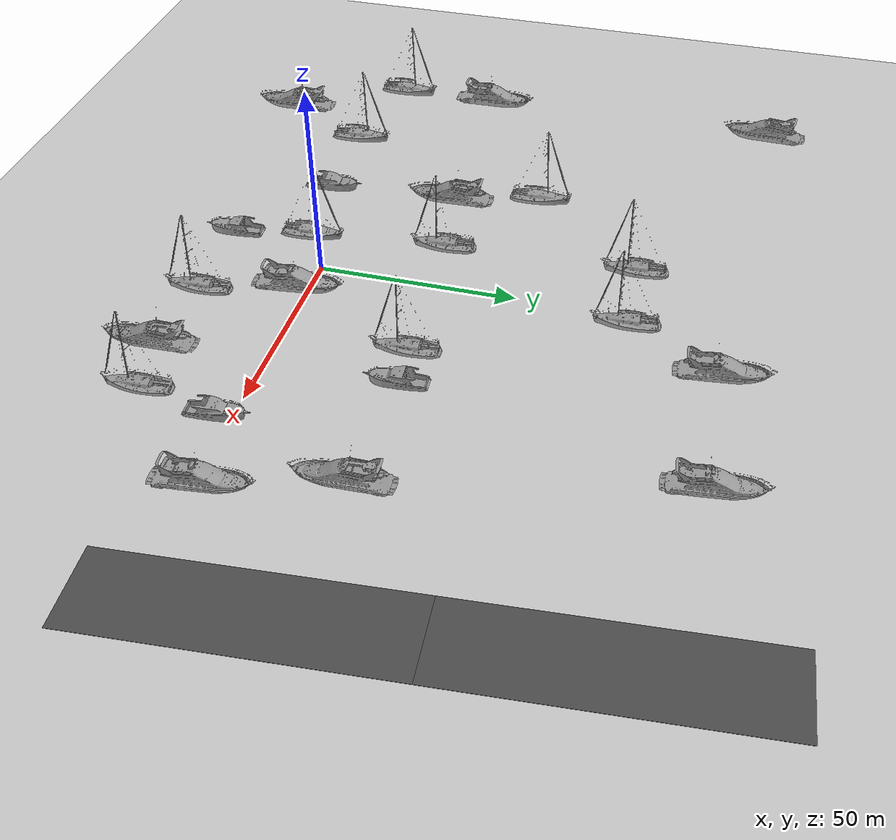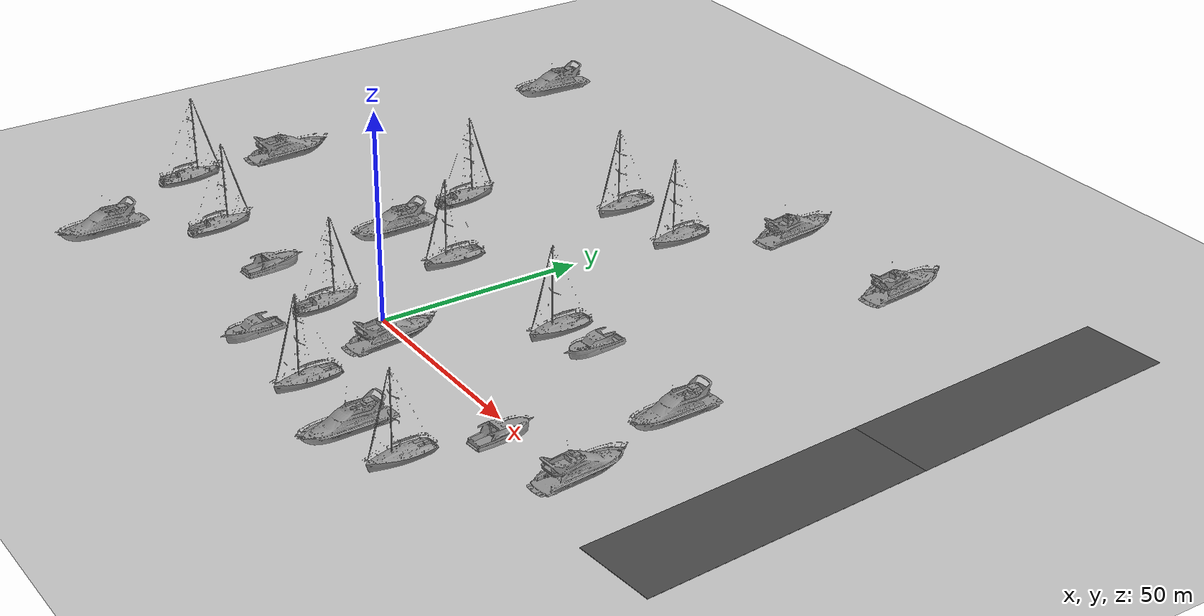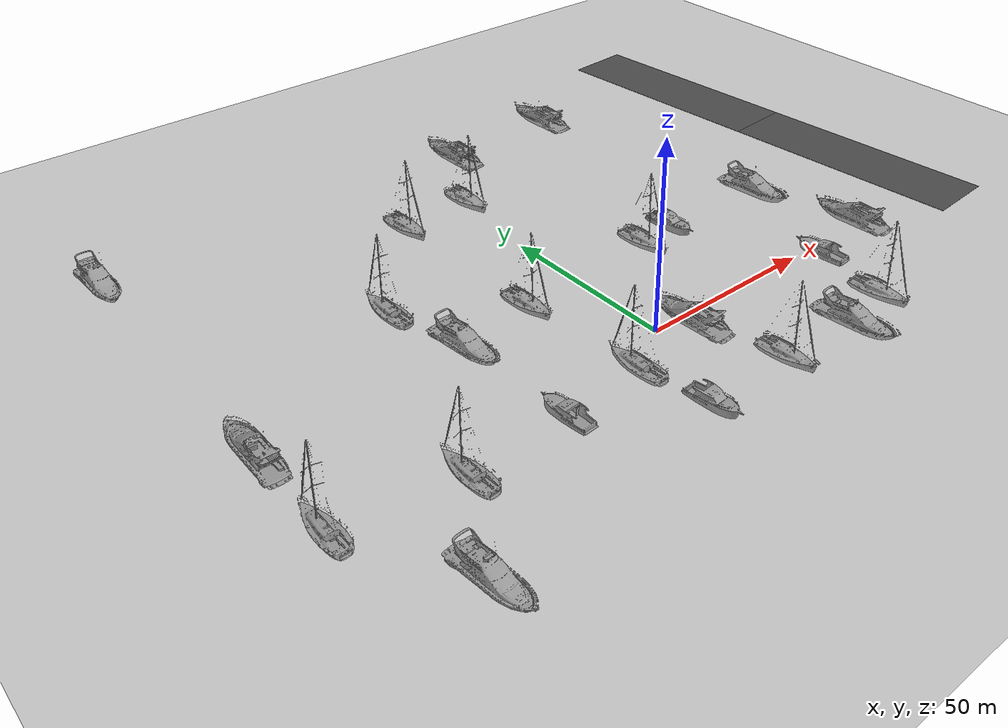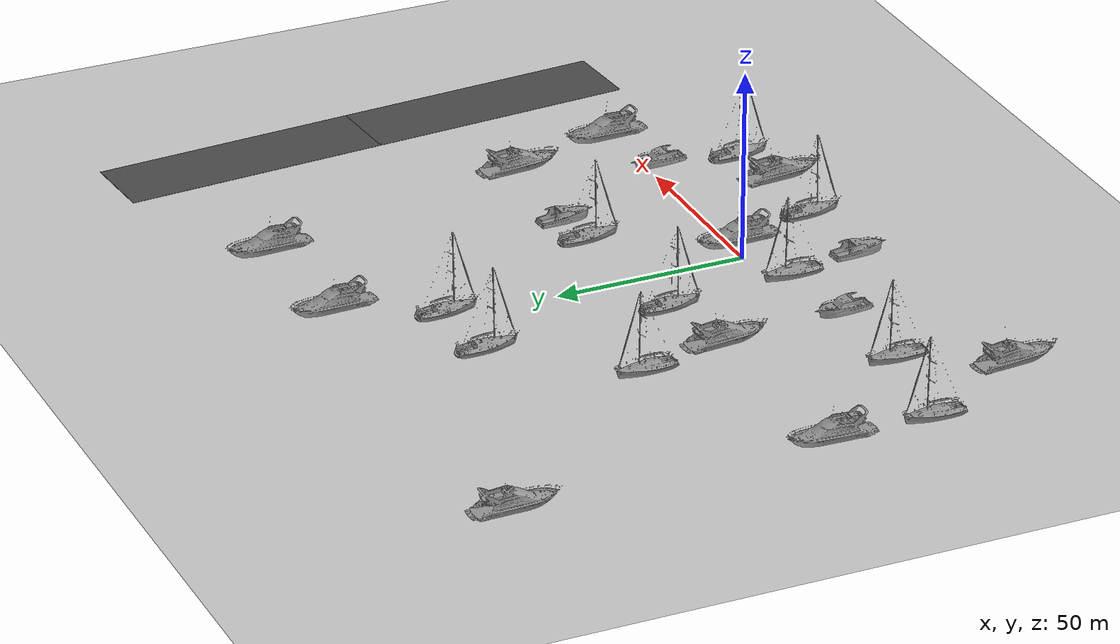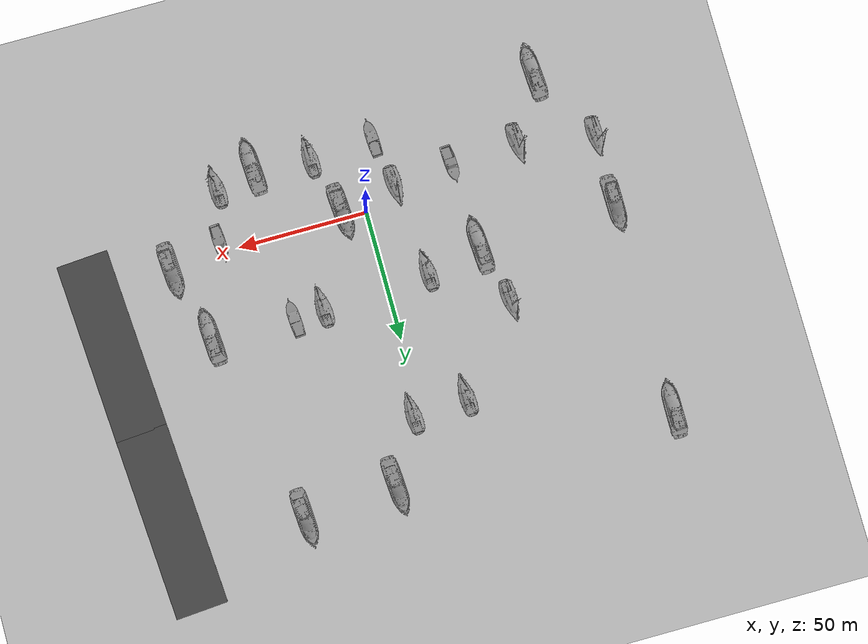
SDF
<sdf version="1.7">
 <world name="default">
  <model name="ground_plane">
   <static>1</static>
   <link name="link">
    <collision name="collision">
     <geometry><plane><normal>0 0 1</normal><size>100 100</size></plane></geometry>
     <surface><friction><ode><mu>100</mu><mu2>50</mu2></ode></friction></surface>
    </collision>
    <visual name="visual">
     <cast_shadows>0</cast_shadows>
     <geometry><plane><normal>0 0 1</normal><size>100 100</size></plane></geometry>
     <material>
      <script><uri>file://media/materials/scripts/gazebo.material</uri><name>Gazebo/Grey</name></script>
     </material>
    </visual>
   </link>
  </model>
  <model name="yacht_1">
   <static>1</static>
   <link name="link">
    <visual name="visual">
     <geometry>
      <mesh>
       <uri>/home/albert/marinero_ws/src/marinero_simulations/models/yacht_1/meshes/Yacht_v2.dae</uri>
       <scale>2.5 2.5 2.5</scale>
      </mesh>
     </geometry>
     <material>
      <script><uri>file://media/materials/scripts/gazebo.material</uri><name>Gazebo/Grey</name></script>
     </material>
    </visual>
    <collision name="collision">
     <geometry>
      <mesh>
       <uri>/home/albert/marinero_ws/src/marinero_simulations/models/yacht_1/meshes/Yacht_v2.dae</uri>
       <scale>2.5 2.5 2.5</scale>
      </mesh>
     </geometry>
    </collision>
   </link>
   <pose>-38.0961 24.5278 0.645733 0 -0 0.06455</pose>
  </model>
  <model name="yacht_1_0">
   <static>1</static>
   <link name="link">
    <visual name="visual">
     <geometry>
      <mesh>
       <uri>/home/albert/marinero_ws/src/marinero_simulations/models/yacht_2/meshes/Yatch.stl</uri>
       <scale>5 5 5</scale>
      </mesh>
     </geometry>
     <material>
      <script><uri>file://media/materials/scripts/gazebo.material</uri><name>Gazebo/Grey</name></script>
     </material>
    </visual>
    <collision name="collision">
     <geometry>
      <mesh>
       <uri>/home/albert/marinero_ws/src/marinero_simulations/models/yacht_2/meshes/Yatch.stl</uri>
       <scale>5 5 5</scale>
      </mesh>
     </geometry>
    </collision>
   </link>
   <pose>-35.982 -9.04595 0 0 -0 0.061909</pose>
  </model>
  <model name="yacht_1_0_clone">
   <static>1</static>
   <link name="link">
    <visual name="visual">
     <geometry>
      <mesh>
       <uri>/home/albert/marinero_ws/src/marinero_simulations/models/yacht_2/meshes/Yatch.stl</uri>
       <scale>5 5 5</scale>
      </mesh>
     </geometry>
     <material>
      <script><uri>file://media/materials/scripts/gazebo.material</uri><name>Gazebo/Grey</name></script>
     </material>
    </visual>
    <collision name="collision">
     <geometry>
      <mesh>
       <uri>/home/albert/marinero_ws/src/marinero_simulations/models/yacht_2/meshes/Yatch.stl</uri>
       <scale>5 5 5</scale>
      </mesh>
     </geometry>
    </collision>
   </link>
   <pose>36.7456 31.0094 0 0 0 -3.07578</pose>
  </model>
  <model name="yacht_1_0_clone_clone">
   <static>1</static>
   <link name="link">
    <visual name="visual">
     <geometry>
      <mesh>
       <uri>/home/albert/marinero_ws/src/marinero_simulations/models/yacht_2/meshes/Yatch.stl</uri>
       <scale>5 5 5</scale>
      </mesh>
     </geometry>
     <material>
      <script><uri>file://media/materials/scripts/gazebo.material</uri><name>Gazebo/Grey</name></script>
     </material>
    </visual>
    <collision name="collision">
     <geometry>
      <mesh>
       <uri>/home/albert/marinero_ws/src/marinero_simulations/models/yacht_2/meshes/Yatch.stl</uri>
       <scale>5 5 5</scale>
      </mesh>
     </geometry>
    </collision>
   </link>
   <pose>56.4576 -3.09947 0 0 -0 0.069781</pose>
  </model>
  <model name="yacht_1_clone">
   <static>1</static>
   <link name="link">
    <visual name="visual">
     <geometry>
      <mesh>
       <uri>/home/albert/marinero_ws/src/marinero_simulations/models/yacht_1/meshes/Yacht_v2.dae</uri>
       <scale>2.5 2.5 2.5</scale>
      </mesh>
     </geometry>
     <material>
      <script><uri>file://media/materials/scripts/gazebo.material</uri><name>Gazebo/Grey</name></script>
     </material>
    </visual>
    <collision name="collision">
     <geometry>
      <mesh>
       <uri>/home/albert/marinero_ws/src/marinero_simulations/models/yacht_1/meshes/Yacht_v2.dae</uri>
       <scale>2.5 2.5 2.5</scale>
      </mesh>
     </geometry>
    </collision>
   </link>
   <pose>68.5762 31.2105 0.645733 0 -0 0.06455</pose>
  </model>
  <model name="yacht_1_clone_0">
   <static>1</static>
   <link name="link">
    <visual name="visual">
     <geometry>
      <mesh>
       <uri>/home/albert/marinero_ws/src/marinero_simulations/models/yacht_1/meshes/Yacht_v2.dae</uri>
       <scale>2.5 2.5 2.5</scale>
      </mesh>
     </geometry>
     <material>
      <script><uri>file://media/materials/scripts/gazebo.material</uri><name>Gazebo/Grey</name></script>
     </material>
    </visual>
    <collision name="collision">
     <geometry>
      <mesh>
       <uri>/home/albert/marinero_ws/src/marinero_simulations/models/yacht_1/meshes/Yacht_v2.dae</uri>
       <scale>2.5 2.5 2.5</scale>
      </mesh>
     </geometry>
    </collision>
   </link>
   <pose>76.8082 0.608495 0.645733 0 0 -3.07126</pose>
  </model>
  <model name="yacht_1_clone_0_clone">
   <static>1</static>
   <link name="link">
    <visual name="visual">
     <geometry>
      <mesh>
       <uri>/home/albert/marinero_ws/src/marinero_simulations/models/yacht_1/meshes/Yacht_v2.dae</uri>
       <scale>2.5 2.5 2.5</scale>
      </mesh>
     </geometry>
     <material>
      <script><uri>file://media/materials/scripts/gazebo.material</uri><name>Gazebo/Grey</name></script>
     </material>
    </visual>
    <collision name="collision">
     <geometry>
      <mesh>
       <uri>/home/albert/marinero_ws/src/marinero_simulations/models/yacht_1/meshes/Yacht_v2.dae</uri>
       <scale>2.5 2.5 2.5</scale>
      </mesh>
     </geometry>
    </collision>
   </link>
   <pose>8.94491 -4.14798 0.645733 0 0 -3.07126</pose>
  </model>
  <model name="yacht_1_clone_clone">
   <static>1</static>
   <link name="link">
    <visual name="visual">
     <geometry>
      <mesh>
       <uri>/home/albert/marinero_ws/src/marinero_simulations/models/yacht_1/meshes/Yacht_v2.dae</uri>
       <scale>2.5 2.5 2.5</scale>
      </mesh>
     </geometry>
     <material>
      <script><uri>file://media/materials/scripts/gazebo.material</uri><name>Gazebo/Grey</name></script>
     </material>
    </visual>
    <collision name="collision">
     <geometry>
      <mesh>
       <uri>/home/albert/marinero_ws/src/marinero_simulations/models/yacht_1/meshes/Yacht_v2.dae</uri>
       <scale>2.5 2.5 2.5</scale>
      </mesh>
     </geometry>
    </collision>
   </link>
   <pose>37.1072 -27.1783 0.645733 0 -0 0.06455</pose>
  </model>
  <model name="yacht_1_0_clone_clone_0">
   <static>1</static>
   <link name="link">
    <visual name="visual">
     <geometry>
      <mesh>
       <uri>/home/albert/marinero_ws/src/marinero_simulations/models/yacht_2/meshes/Yatch.stl</uri>
       <scale>5 5 5</scale>
      </mesh>
     </geometry>
     <material>
      <script><uri>file://media/materials/scripts/gazebo.material</uri><name>Gazebo/Grey</name></script>
     </material>
    </visual>
    <collision name="collision">
     <geometry>
      <mesh>
       <uri>/home/albert/marinero_ws/src/marinero_simulations/models/yacht_2/meshes/Yatch.stl</uri>
       <scale>5 5 5</scale>
      </mesh>
     </geometry>
    </collision>
   </link>
   <pose>-9.67691 -27.4514 0 0 0 -3.07578</pose>
  </model>
  <model name="sailboat_1">
   <static>1</static>
   <link name="link">
    <visual name="visual">
     <pose>0 0 10.5 1.57 -0 0</pose>
     <geometry>
      <mesh>
       <uri>/home/albert/marinero_ws/src/marinero_simulations/models/sailboat_1/meshes/Sailboat.stl</uri>
       <scale>1800 1800 1800</scale>
      </mesh>
     </geometry>
     <material>
      <script><uri>file://media/materials/scripts/gazebo.material</uri><name>Gazebo/Grey</name></script>
     </material>
    </visual>
    <collision name="collision">
     <pose>0 0 10.5 1.57 -0 0</pose>
     <geometry>
      <mesh>
       <uri>/home/albert/marinero_ws/src/marinero_simulations/models/sailboat_1/meshes/Sailboat.stl</uri>
       <scale>1800 1800 1800</scale>
      </mesh>
     </geometry>
    </collision>
   </link>
   <pose>-62.3359 -10.8868 -0.195807 0 0 -1.52083</pose>
  </model>
  <model name="sailboat_1_clone">
   <static>1</static>
   <link name="link">
    <visual name="visual">
     <pose>0 0 10.5 1.57 -0 0</pose>
     <geometry>
      <mesh>
       <uri>/home/albert/marinero_ws/src/marinero_simulations/models/sailboat_1/meshes/Sailboat.stl</uri>
       <scale>1800 1800 1800</scale>
      </mesh>
     </geometry>
     <material>
      <script><uri>file://media/materials/scripts/gazebo.material</uri><name>Gazebo/Grey</name></script>
     </material>
    </visual>
    <collision name="collision">
     <pose>0 0 10.5 1.57 -0 0</pose>
     <geometry>
      <mesh>
       <uri>/home/albert/marinero_ws/src/marinero_simulations/models/sailboat_1/meshes/Sailboat.stl</uri>
       <scale>1800 1800 1800</scale>
      </mesh>
     </geometry>
    </collision>
   </link>
   <pose>-13.1173 -7.54207 -0.195807 0 0 -1.52083</pose>
  </model>
  <model name="sailboat_1_clone_0">
   <static>1</static>
   <link name="link">
    <visual name="visual">
     <pose>0 0 10.5 1.57 -0 0</pose>
     <geometry>
      <mesh>
       <uri>/home/albert/marinero_ws/src/marinero_simulations/models/sailboat_1/meshes/Sailboat.stl</uri>
       <scale>1800 1800 1800</scale>
      </mesh>
     </geometry>
     <material>
      <script><uri>file://media/materials/scripts/gazebo.material</uri><name>Gazebo/Grey</name></script>
     </material>
    </visual>
    <collision name="collision">
     <pose>0 0 10.5 1.57 -0 0</pose>
     <geometry>
      <mesh>
       <uri>/home/albert/marinero_ws/src/marinero_simulations/models/sailboat_1/meshes/Sailboat.stl</uri>
       <scale>1800 1800 1800</scale>
      </mesh>
     </geometry>
    </collision>
   </link>
   <pose>-16.4703 27.6688 -0.195807 0 -0 1.63495</pose>
  </model>
  <model name="sailboat_1_clone_0_clone">
   <static>1</static>
   <link name="link">
    <visual name="visual">
     <pose>0 0 10.5 1.57 -0 0</pose>
     <geometry>
      <mesh>
       <uri>/home/albert/marinero_ws/src/marinero_simulations/models/sailboat_1/meshes/Sailboat.stl</uri>
       <scale>1800 1800 1800</scale>
      </mesh>
     </geometry>
     <material>
      <script><uri>file://media/materials/scripts/gazebo.material</uri><name>Gazebo/Grey</name></script>
     </material>
    </visual>
    <collision name="collision">
     <pose>0 0 10.5 1.57 -0 0</pose>
     <geometry>
      <mesh>
       <uri>/home/albert/marinero_ws/src/marinero_simulations/models/sailboat_1/meshes/Sailboat.stl</uri>
       <scale>1800 1800 1800</scale>
      </mesh>
     </geometry>
    </collision>
   </link>
   <pose>25.1764 30.4207 -0.195807 0 -0 1.63495</pose>
  </model>
  <model name="sailboat_1_clone_0_clone_0">
   <static>1</static>
   <link name="link">
    <visual name="visual">
     <pose>0 0 10.5 1.57 -0 0</pose>
     <geometry>
      <mesh>
       <uri>/home/albert/marinero_ws/src/marinero_simulations/models/sailboat_1/meshes/Sailboat.stl</uri>
       <scale>1800 1800 1800</scale>
      </mesh>
     </geometry>
     <material>
      <script><uri>file://media/materials/scripts/gazebo.material</uri><name>Gazebo/Grey</name></script>
     </material>
    </visual>
    <collision name="collision">
     <pose>0 0 10.5 1.57 -0 0</pose>
     <geometry>
      <mesh>
       <uri>/home/albert/marinero_ws/src/marinero_simulations/models/sailboat_1/meshes/Sailboat.stl</uri>
       <scale>1800 1800 1800</scale>
      </mesh>
     </geometry>
    </collision>
   </link>
   <pose>15.1123 -25.8395 -0.195807 0 -0 1.63495</pose>
  </model>
  <model name="yacht_1_clone_1">
   <static>1</static>
   <link name="link">
    <visual name="visual">
     <geometry>
      <mesh>
       <uri>/home/albert/marinero_ws/src/marinero_simulations/models/yacht_1/meshes/Yacht_v2.dae</uri>
       <scale>2.5 2.5 2.5</scale>
      </mesh>
     </geometry>
     <material>
      <script><uri>file://media/materials/scripts/gazebo.material</uri><name>Gazebo/Grey</name></script>
     </material>
    </visual>
    <collision name="collision">
     <geometry>
      <mesh>
       <uri>/home/albert/marinero_ws/src/marinero_simulations/models/yacht_1/meshes/Yacht_v2.dae</uri>
       <scale>2.5 2.5 2.5</scale>
      </mesh>
     </geometry>
    </collision>
   </link>
   <pose>-91.7167 20.3786 0.645733 0 -0 3.13594</pose>
  </model>
  <model name="sailboat_1_clone_0_clone_1">
   <static>1</static>
   <link name="link">
    <visual name="visual">
     <pose>0 0 10.5 1.57 -0 0</pose>
     <geometry>
      <mesh>
       <uri>/home/albert/marinero_ws/src/marinero_simulations/models/sailboat_1/meshes/Sailboat.stl</uri>
       <scale>1800 1800 1800</scale>
      </mesh>
     </geometry>
     <material>
      <script><uri>file://media/materials/scripts/gazebo.material</uri><name>Gazebo/Grey</name></script>
     </material>
    </visual>
    <collision name="collision">
     <pose>0 0 10.5 1.57 -0 0</pose>
     <geometry>
      <mesh>
       <uri>/home/albert/marinero_ws/src/marinero_simulations/models/sailboat_1/meshes/Sailboat.stl</uri>
       <scale>1800 1800 1800</scale>
      </mesh>
     </geometry>
    </collision>
   </link>
   <pose>52.239 -24.0018 -0.195807 0 -0 1.63495</pose>
  </model>
  <model name="sailboat_1_clone_1">
   <static>1</static>
   <link name="link">
    <visual name="visual">
     <pose>0 0 10.5 1.57 -0 0</pose>
     <geometry>
      <mesh>
       <uri>/home/albert/marinero_ws/src/marinero_simulations/models/sailboat_1/meshes/Sailboat.stl</uri>
       <scale>1800 1800 1800</scale>
      </mesh>
     </geometry>
     <material>
      <script><uri>file://media/materials/scripts/gazebo.material</uri><name>Gazebo/Grey</name></script>
     </material>
    </visual>
    <collision name="collision">
     <pose>0 0 10.5 1.57 -0 0</pose>
     <geometry>
      <mesh>
       <uri>/home/albert/marinero_ws/src/marinero_simulations/models/sailboat_1/meshes/Sailboat.stl</uri>
       <scale>1800 1800 1800</scale>
      </mesh>
     </geometry>
    </collision>
   </link>
   <pose>-91.8795 -5.49367 -0.195807 0 0 -1.5691</pose>
  </model>
  <model name="asphalt_plane">
   <link name="link">
    <inertial>
     <mass>1</mass>
     <inertia><ixx>1</ixx><ixy>0</ixy><ixz>0</ixz><iyy>1</iyy><iyz>0</iyz><izz>1</izz></inertia>
    </inertial>
    <visual name="visual">
     <cast_shadows>0</cast_shadows>
     <geometry><box><size>70 20 0.1</size></box></geometry>
     <material>
      <script>
       <uri>model://asphalt_plane/materials/scripts</uri>
       <uri>model://asphalt_plane/materials/textures</uri>
       <name>vrc/asphalt</name>
      </script>
      <shader type="pixel"><normal_map>__default__</normal_map></shader>
      <ambient>0.5 0.5 0.5 1</ambient>
      <diffuse>0.5 0.5 0.5 1</diffuse>
      <specular>0.2 0.2 0.2 1</specular>
      <emissive>0 0 0 1</emissive>
     </material>
    </visual>
    <collision name="collision">
     <geometry><box><size>70 20 0.1</size></box></geometry>
     <surface>
      <friction>
       <ode><mu>1</mu><mu2>1</mu2><fdir1>0 0 0</fdir1><slip1>0.001</slip1><slip2>1e-05</slip2></ode>
       <torsional>
        <coefficient>1</coefficient>
        <patch_radius>0</patch_radius>
        <surface_radius>0</surface_radius>
        <use_patch_radius>1</use_patch_radius>
        <ode><slip>0</slip></ode>
       </torsional>
      </friction>
      <bounce><restitution_coefficient>0</restitution_coefficient><threshold>1e+06</threshold></bounce>
      <contact>
       <collide_without_contact>0</collide_without_contact>
       <collide_without_contact_bitmask>1</collide_without_contact_bitmask>
       <collide_bitmask>1</collide_bitmask>
       <ode>
        <soft_cfm>0</soft_cfm>
        <soft_erp>0.2</soft_erp>
        <kp>1e+13</kp>
        <kd>1</kd>
        <max_vel>0.01</max_vel>
        <min_depth>0</min_depth>
       </ode>
       <bullet>
        <split_impulse>1</split_impulse>
        <split_impulse_penetration_threshold>-0.01</split_impulse_penetration_threshold>
        <soft_cfm>0</soft_cfm>
        <soft_erp>0.2</soft_erp>
        <kp>1e+13</kp>
        <kd>1</kd>
       </bullet>
      </contact>
     </surface>
    </collision>
   </link>
   <static>1</static>
   <pose>105.889 23.3175 1.215 0 0 -1.498</pose>
  </model>
  <model name="yacht_1_clone_clone_0">
   <static>1</static>
   <link name="link">
    <visual name="visual">
     <geometry>
      <mesh>
       <uri>/home/albert/marinero_ws/src/marinero_simulations/models/yacht_1/meshes/Yacht_v2.dae</uri>
       <scale>2.5 2.5 2.5</scale>
      </mesh>
     </geometry>
     <material>
      <script><uri>file://media/materials/scripts/gazebo.material</uri><name>Gazebo/Grey</name></script>
     </material>
    </visual>
    <collision name="collision">
     <geometry>
      <mesh>
       <uri>/home/albert/marinero_ws/src/marinero_simulations/models/yacht_1/meshes/Yacht_v2.dae</uri>
       <scale>2.5 2.5 2.5</scale>
      </mesh>
     </geometry>
    </collision>
   </link>
   <pose>-75.6764 -33.8622 0.645733 0 -0 0.06455</pose>
  </model>
  <model name="sailboat_1_clone_0_clone_2">
   <static>1</static>
   <link name="link">
    <visual name="visual">
     <pose>0 0 10.5 1.57 -0 0</pose>
     <geometry>
      <mesh>
       <uri>/home/albert/marinero_ws/src/marinero_simulations/models/sailboat_1/meshes/Sailboat.stl</uri>
       <scale>1800 1800 1800</scale>
      </mesh>
     </geometry>
     <material>
      <script><uri>file://media/materials/scripts/gazebo.material</uri><name>Gazebo/Grey</name></script>
     </material>
    </visual>
    <collision name="collision">
     <pose>0 0 10.5 1.57 -0 0</pose>
     <geometry>
      <mesh>
       <uri>/home/albert/marinero_ws/src/marinero_simulations/models/sailboat_1/meshes/Sailboat.stl</uri>
       <scale>1800 1800 1800</scale>
      </mesh>
     </geometry>
    </collision>
   </link>
   <pose>-17.9908 76.8893 -0.195807 0 -0 1.63495</pose>
  </model>
  <model name="sailboat_1_clone_0_clone_3">
   <static>1</static>
   <link name="link">
    <visual name="visual">
     <pose>0 0 10.5 1.57 -0 0</pose>
     <geometry>
      <mesh>
       <uri>/home/albert/marinero_ws/src/marinero_simulations/models/sailboat_1/meshes/Sailboat.stl</uri>
       <scale>1800 1800 1800</scale>
      </mesh>
     </geometry>
     <material>
      <script><uri>file://media/materials/scripts/gazebo.material</uri><name>Gazebo/Grey</name></script>
     </material>
    </visual>
    <collision name="collision">
     <pose>0 0 10.5 1.57 -0 0</pose>
     <geometry>
      <mesh>
       <uri>/home/albert/marinero_ws/src/marinero_simulations/models/sailboat_1/meshes/Sailboat.stl</uri>
       <scale>1800 1800 1800</scale>
      </mesh>
     </geometry>
    </collision>
   </link>
   <pose>3.20704 78.1827 -0.195807 0 -0 1.63495</pose>
  </model>
  <model name="yacht_1_clone_1_clone">
   <static>1</static>
   <link name="link">
    <visual name="visual">
     <geometry>
      <mesh>
       <uri>/home/albert/marinero_ws/src/marinero_simulations/models/yacht_1/meshes/Yacht_v2.dae</uri>
       <scale>2.5 2.5 2.5</scale>
      </mesh>
     </geometry>
     <material>
      <script><uri>file://media/materials/scripts/gazebo.material</uri><name>Gazebo/Grey</name></script>
     </material>
    </visual>
    <collision name="collision">
     <geometry>
      <mesh>
       <uri>/home/albert/marinero_ws/src/marinero_simulations/models/yacht_1/meshes/Yacht_v2.dae</uri>
       <scale>2.5 2.5 2.5</scale>
      </mesh>
     </geometry>
    </collision>
   </link>
   <pose>-91.4066 103.279 0.645733 0 0 -0.003442</pose>
  </model>
  <model name="yacht_1_clone_0_clone_clone">
   <static>1</static>
   <link name="link">
    <visual name="visual">
     <geometry>
      <mesh>
       <uri>/home/albert/marinero_ws/src/marinero_simulations/models/yacht_1/meshes/Yacht_v2.dae</uri>
       <scale>2.5 2.5 2.5</scale>
      </mesh>
     </geometry>
     <material>
      <script><uri>file://media/materials/scripts/gazebo.material</uri><name>Gazebo/Grey</name></script>
     </material>
    </visual>
    <collision name="collision">
     <geometry>
      <mesh>
       <uri>/home/albert/marinero_ws/src/marinero_simulations/models/yacht_1/meshes/Yacht_v2.dae</uri>
       <scale>2.5 2.5 2.5</scale>
      </mesh>
     </geometry>
    </collision>
   </link>
   <pose>16.4721 100.825 0.645733 0 0 -3.07126</pose>
  </model>
  <model name="yacht_1_clone_0_clone_clone_clone">
   <static>1</static>
   <link name="link">
    <visual name="visual">
     <geometry>
      <mesh>
       <uri>/home/albert/marinero_ws/src/marinero_simulations/models/yacht_1/meshes/Yacht_v2.dae</uri>
       <scale>2.5 2.5 2.5</scale>
      </mesh>
     </geometry>
     <material>
      <script><uri>file://media/materials/scripts/gazebo.material</uri><name>Gazebo/Grey</name></script>
     </material>
    </visual>
    <collision name="collision">
     <geometry>
      <mesh>
       <uri>/home/albert/marinero_ws/src/marinero_simulations/models/yacht_1/meshes/Yacht_v2.dae</uri>
       <scale>2.5 2.5 2.5</scale>
      </mesh>
     </geometry>
    </collision>
   </link>
   <pose>52.3773 103.268 0.645733 0 0 -3.07126</pose>
  </model>
  <model name="asphalt_plane_clone">
   <link name="link">
    <inertial>
     <mass>1</mass>
     <inertia><ixx>1</ixx><ixy>0</ixy><ixz>0</ixz><iyy>1</iyy><iyz>0</iyz><izz>1</izz></inertia>
    </inertial>
    <visual name="visual">
     <cast_shadows>0</cast_shadows>
     <geometry><box><size>70 20 0.1</size></box></geometry>
     <material>
      <script>
       <uri>model://asphalt_plane/materials/scripts</uri>
       <uri>model://asphalt_plane/materials/textures</uri>
       <name>vrc/asphalt</name>
      </script>
      <shader type="pixel"><normal_map>__default__</normal_map></shader>
      <ambient>0.5 0.5 0.5 1</ambient>
      <diffuse>0.5 0.5 0.5 1</diffuse>
      <specular>0.2 0.2 0.2 1</specular>
      <emissive>0 0 0 1</emissive>
     </material>
    </visual>
    <collision name="collision">
     <geometry><box><size>70 20 0.1</size></box></geometry>
     <surface>
      <friction>
       <ode><mu>1</mu><mu2>1</mu2><fdir1>0 0 0</fdir1><slip1>0.001</slip1><slip2>1e-05</slip2></ode>
       <torsional>
        <coefficient>1</coefficient>
        <patch_radius>0</patch_radius>
        <surface_radius>0</surface_radius>
        <use_patch_radius>1</use_patch_radius>
        <ode><slip>0</slip></ode>
       </torsional>
      </friction>
      <bounce><restitution_coefficient>0</restitution_coefficient><threshold>1e+06</threshold></bounce>
      <contact>
       <collide_without_contact>0</collide_without_contact>
       <collide_without_contact_bitmask>1</collide_without_contact_bitmask>
       <collide_bitmask>1</collide_bitmask>
       <ode>
        <soft_cfm>0</soft_cfm>
        <soft_erp>0.2</soft_erp>
        <kp>1e+13</kp>
        <kd>1</kd>
        <max_vel>0.01</max_vel>
        <min_depth>0</min_depth>
       </ode>
       <bullet>
        <split_impulse>1</split_impulse>
        <split_impulse_penetration_threshold>-0.01</split_impulse_penetration_threshold>
        <soft_cfm>0</soft_cfm>
        <soft_erp>0.2</soft_erp>
        <kp>1e+13</kp>
        <kd>1</kd>
       </bullet>
      </contact>
     </surface>
    </collision>
   </link>
   <static>1</static>
   <pose>100.791 92.6278 1.215 0 0 -1.4967</pose>
  </model>
  <model name="sailboat_1_clone_clone_0_clone">
   <static>1</static>
   <link name="link">
    <visual name="visual">
     <pose>0 0 10.5 1.57 -0 0</pose>
     <geometry>
      <mesh>
       <uri>/home/albert/marinero_ws/src/marinero_simulations/models/sailboat_1/meshes/Sailboat.stl</uri>
       <scale>1800 1800 1800</scale>
      </mesh>
     </geometry>
     <material>
      <script><uri>file://media/materials/scripts/gazebo.material</uri><name>Gazebo/Grey</name></script>
     </material>
    </visual>
    <collision name="collision">
     <pose>0 0 10.5 1.57 -0 0</pose>
     <geometry>
      <mesh>
       <uri>/home/albert/marinero_ws/src/marinero_simulations/models/sailboat_1/meshes/Sailboat.stl</uri>
       <scale>1800 1800 1800</scale>
      </mesh>
     </geometry>
    </collision>
   </link>
   <pose>-43.5932 46.1749 -0.195807 0 0 -1.52083</pose>
  </model>
 </world>
</sdf>
